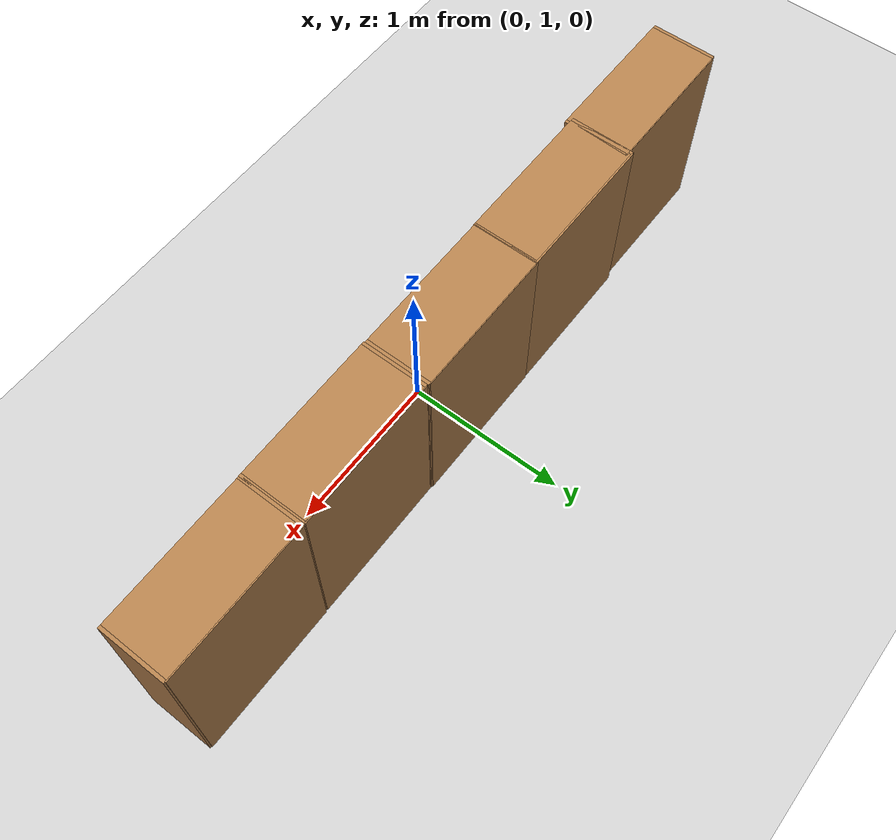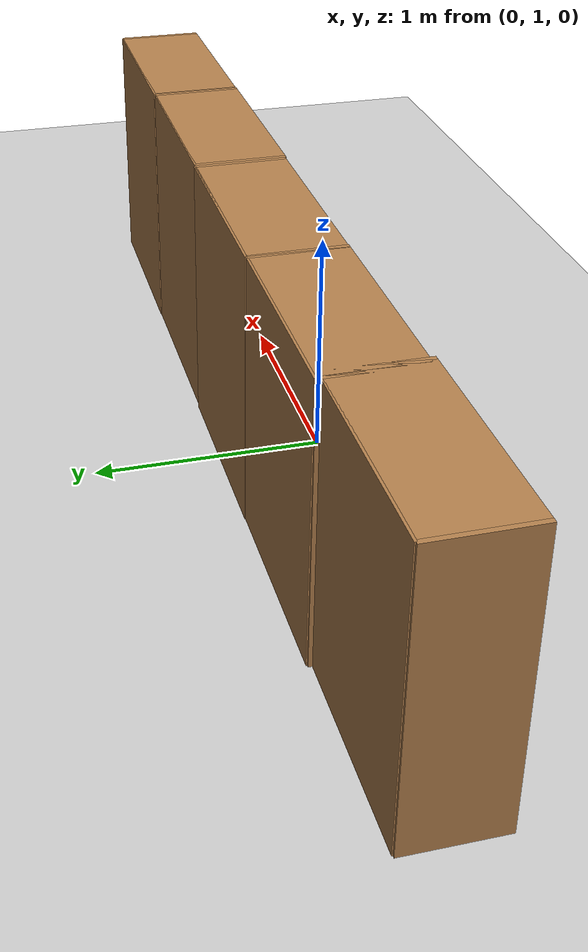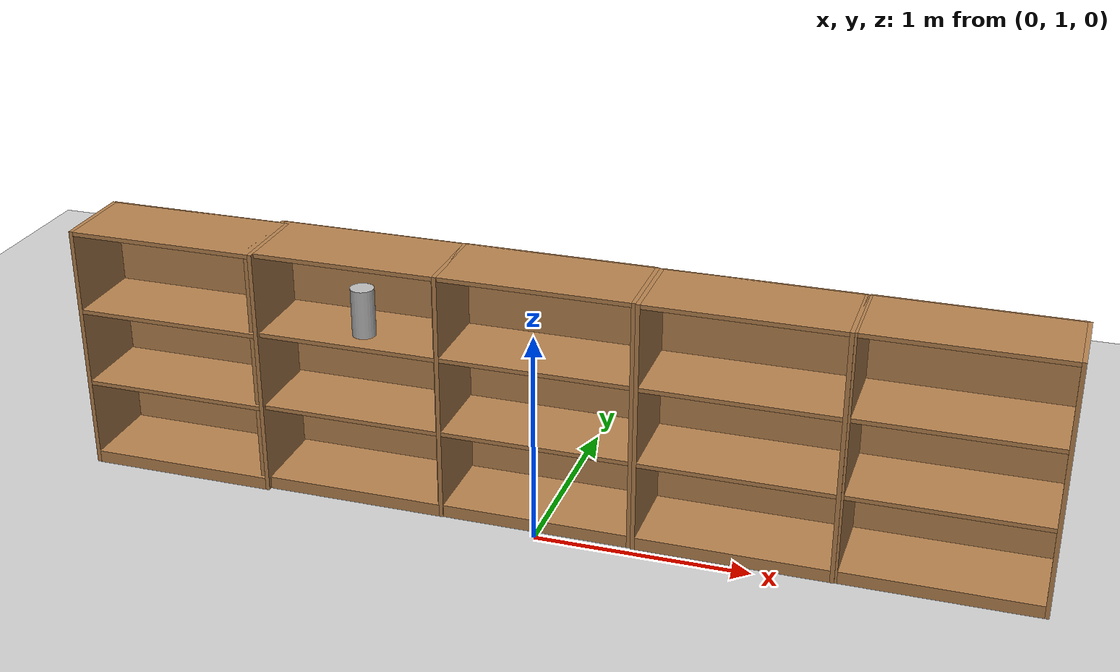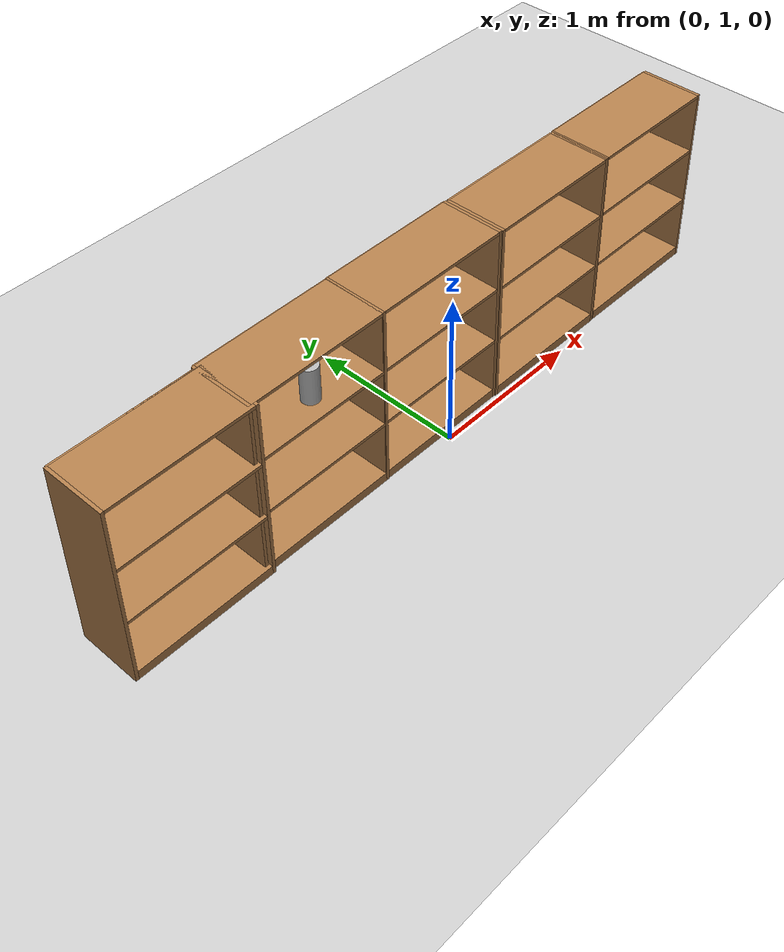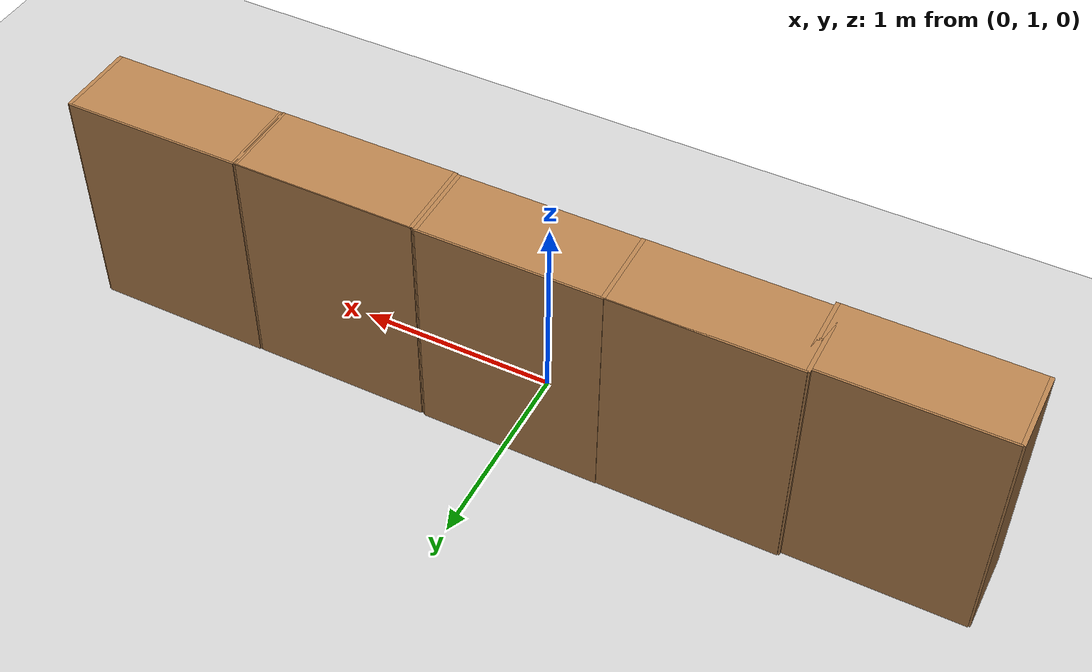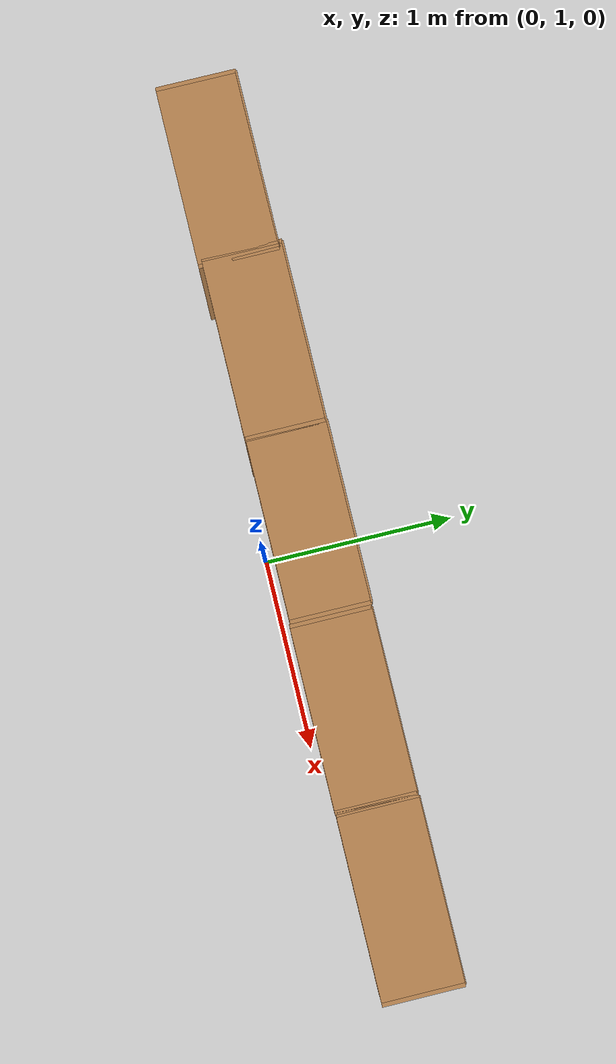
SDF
<sdf version="1.6">
 <world name="default">
  <light name="sun" type="directional">
   <pose>0 0 10 0 -0 0</pose>
   <diffuse>0.8 0.8 0.8 1</diffuse>
   <specular>0.2 0.2 0.2 1</specular>
   <attenuation>
    <range>1000</range>
    <constant>0.9</constant>
    <linear>0.01</linear>
    <quadratic>0.001</quadratic>
   </attenuation>
   <direction>-0.5 0.1 -0.9</direction>
  </light>
  <model name="ground_plane">
   <static>1</static>
   <link name="link">
    <collision name="collision">
     <geometry><plane><normal>0 0 1</normal><size>100 100</size></plane></geometry>
     <surface><friction><ode><mu>100</mu><mu2>50</mu2></ode></friction></surface>
    </collision>
    <visual name="visual">
     <cast_shadows>0</cast_shadows>
     <geometry><plane><normal>0 0 1</normal><size>100 100</size></plane></geometry>
     <material>
      <script><uri>file://media/materials/scripts/gazebo.material</uri><name>Gazebo/Grey</name></script>
     </material>
    </visual>
   </link>
  </model>
  <gravity>0 0 -9.8</gravity>
  <magnetic_field>6e-06 2.3e-05 -4.2e-05</magnetic_field>
  <atmosphere type="adiabatic"/>
  <physics name="default_physics" default="0" type="ode">
   <max_step_size>0.001</max_step_size>
   <real_time_factor>1</real_time_factor>
   <real_time_update_rate>1000</real_time_update_rate>
  </physics>
  <scene><ambient>0.4 0.4 0.4 1</ambient><background>0.7 0.7 0.7 1</background><shadows>1</shadows></scene>
  <spherical_coordinates>
   <surface_model>EARTH_WGS84</surface_model>
   <latitude_deg>0</latitude_deg>
   <longitude_deg>0</longitude_deg>
   <elevation>0</elevation>
   <heading_deg>0</heading_deg>
  </spherical_coordinates>
  <model name="shelvs_5">
   <model name="bookshelf">
    <static>1</static>
    <link name="link">
     <inertial><mass>1</mass></inertial>
     <collision name="back">
      <pose>0 0.005 0.6 0 -0 0</pose>
      <geometry><box><size>0.9 0.01 1.2</size></box></geometry>
     </collision>
     <visual name="visual1">
      <pose>0 0.005 0.6 0 -0 0</pose>
      <geometry><box><size>0.9 0.01 1.2</size></box></geometry>
      <material>
       <script><uri>file://media/materials/scripts/gazebo.material</uri><name>Gazebo/Wood</name></script>
      </material>
     </visual>
     <collision name="left_side">
      <pose>0.45 -0.195 0.6 0 -0 0</pose>
      <geometry><box><size>0.02 0.4 1.2</size></box></geometry>
     </collision>
     <visual name="visual2">
      <pose>0.45 -0.195 0.6 0 -0 0</pose>
      <geometry><box><size>0.02 0.4 1.2</size></box></geometry>
      <material>
       <script><uri>file://media/materials/scripts/gazebo.material</uri><name>Gazebo/Wood</name></script>
      </material>
     </visual>
     <collision name="right_side">
      <pose>-0.45 -0.195 0.6 0 -0 0</pose>
      <geometry><box><size>0.02 0.4 1.2</size></box></geometry>
     </collision>
     <visual name="visual3">
      <pose>-0.45 -0.195 0.6 0 -0 0</pose>
      <geometry><box><size>0.02 0.4 1.2</size></box></geometry>
      <material>
       <script><uri>file://media/materials/scripts/gazebo.material</uri><name>Gazebo/Wood</name></script>
      </material>
     </visual>
     <collision name="bottom">
      <pose>0 -0.195 0.03 0 -0 0</pose>
      <geometry><box><size>0.88 0.4 0.06</size></box></geometry>
     </collision>
     <visual name="visual4">
      <pose>0 -0.195 0.03 0 -0 0</pose>
      <geometry><box><size>0.88 0.4 0.06</size></box></geometry>
      <material>
       <script><uri>file://media/materials/scripts/gazebo.material</uri><name>Gazebo/Wood</name></script>
      </material>
     </visual>
     <collision name="top">
      <pose>0 -0.195 1.19 0 -0 0</pose>
      <geometry><box><size>0.88 0.4 0.02</size></box></geometry>
     </collision>
     <visual name="visual5">
      <pose>0 -0.195 1.19 0 -0 0</pose>
      <geometry><box><size>0.88 0.4 0.02</size></box></geometry>
      <material>
       <script><uri>file://media/materials/scripts/gazebo.material</uri><name>Gazebo/Wood</name></script>
      </material>
     </visual>
     <collision name="low_shelf">
      <pose>0 -0.195 0.43 0 -0 0</pose>
      <geometry><box><size>0.88 0.4 0.02</size></box></geometry>
     </collision>
     <visual name="visual6">
      <pose>0 -0.195 0.43 0 -0 0</pose>
      <geometry><box><size>0.88 0.4 0.02</size></box></geometry>
      <material>
       <script><uri>file://media/materials/scripts/gazebo.material</uri><name>Gazebo/Wood</name></script>
      </material>
     </visual>
     <collision name="high_shelf">
      <pose>0 -0.195 0.8 0 -0 0</pose>
      <geometry><box><size>0.88 0.4 0.02</size></box></geometry>
     </collision>
     <visual name="visual7">
      <pose>0 -0.195 0.8 0 -0 0</pose>
      <geometry><box><size>0.88 0.4 0.02</size></box></geometry>
      <material>
       <script><uri>file://media/materials/scripts/gazebo.material</uri><name>Gazebo/Wood</name></script>
      </material>
     </visual>
    </link>
    <pose>1.48454 -0.585248 0.125186 0 -0 0</pose>
   </model>
   <model name="bookshelf_0">
    <static>1</static>
    <link name="link">
     <inertial><mass>1</mass></inertial>
     <collision name="back">
      <pose>0 0.005 0.6 0 -0 0</pose>
      <geometry><box><size>0.9 0.01 1.2</size></box></geometry>
     </collision>
     <visual name="visual1">
      <pose>0 0.005 0.6 0 -0 0</pose>
      <geometry><box><size>0.9 0.01 1.2</size></box></geometry>
      <material>
       <script><uri>file://media/materials/scripts/gazebo.material</uri><name>Gazebo/Wood</name></script>
      </material>
     </visual>
     <collision name="left_side">
      <pose>0.45 -0.195 0.6 0 -0 0</pose>
      <geometry><box><size>0.02 0.4 1.2</size></box></geometry>
     </collision>
     <visual name="visual2">
      <pose>0.45 -0.195 0.6 0 -0 0</pose>
      <geometry><box><size>0.02 0.4 1.2</size></box></geometry>
      <material>
       <script><uri>file://media/materials/scripts/gazebo.material</uri><name>Gazebo/Wood</name></script>
      </material>
     </visual>
     <collision name="right_side">
      <pose>-0.45 -0.195 0.6 0 -0 0</pose>
      <geometry><box><size>0.02 0.4 1.2</size></box></geometry>
     </collision>
     <visual name="visual3">
      <pose>-0.45 -0.195 0.6 0 -0 0</pose>
      <geometry><box><size>0.02 0.4 1.2</size></box></geometry>
      <material>
       <script><uri>file://media/materials/scripts/gazebo.material</uri><name>Gazebo/Wood</name></script>
      </material>
     </visual>
     <collision name="bottom">
      <pose>0 -0.195 0.03 0 -0 0</pose>
      <geometry><box><size>0.88 0.4 0.06</size></box></geometry>
     </collision>
     <visual name="visual4">
      <pose>0 -0.195 0.03 0 -0 0</pose>
      <geometry><box><size>0.88 0.4 0.06</size></box></geometry>
      <material>
       <script><uri>file://media/materials/scripts/gazebo.material</uri><name>Gazebo/Wood</name></script>
      </material>
     </visual>
     <collision name="top">
      <pose>0 -0.195 1.19 0 -0 0</pose>
      <geometry><box><size>0.88 0.4 0.02</size></box></geometry>
     </collision>
     <visual name="visual5">
      <pose>0 -0.195 1.19 0 -0 0</pose>
      <geometry><box><size>0.88 0.4 0.02</size></box></geometry>
      <material>
       <script><uri>file://media/materials/scripts/gazebo.material</uri><name>Gazebo/Wood</name></script>
      </material>
     </visual>
     <collision name="low_shelf">
      <pose>0 -0.195 0.43 0 -0 0</pose>
      <geometry><box><size>0.88 0.4 0.02</size></box></geometry>
     </collision>
     <visual name="visual6">
      <pose>0 -0.195 0.43 0 -0 0</pose>
      <geometry><box><size>0.88 0.4 0.02</size></box></geometry>
      <material>
       <script><uri>file://media/materials/scripts/gazebo.material</uri><name>Gazebo/Wood</name></script>
      </material>
     </visual>
     <collision name="high_shelf">
      <pose>0 -0.195 0.8 0 -0 0</pose>
      <geometry><box><size>0.88 0.4 0.02</size></box></geometry>
     </collision>
     <visual name="visual7">
      <pose>0 -0.195 0.8 0 -0 0</pose>
      <geometry><box><size>0.88 0.4 0.02</size></box></geometry>
      <material>
       <script><uri>file://media/materials/scripts/gazebo.material</uri><name>Gazebo/Wood</name></script>
      </material>
     </visual>
    </link>
    <pose>0.564761 -0.579556 0.125186 0 -0 0</pose>
   </model>
   <model name="bookshelf_1">
    <static>1</static>
    <link name="link">
     <inertial><mass>1</mass></inertial>
     <collision name="back">
      <pose>0 0.005 0.6 0 -0 0</pose>
      <geometry><box><size>0.9 0.01 1.2</size></box></geometry>
     </collision>
     <visual name="visual1">
      <pose>0 0.005 0.6 0 -0 0</pose>
      <geometry><box><size>0.9 0.01 1.2</size></box></geometry>
      <material>
       <script><uri>file://media/materials/scripts/gazebo.material</uri><name>Gazebo/Wood</name></script>
      </material>
     </visual>
     <collision name="left_side">
      <pose>0.45 -0.195 0.6 0 -0 0</pose>
      <geometry><box><size>0.02 0.4 1.2</size></box></geometry>
     </collision>
     <visual name="visual2">
      <pose>0.45 -0.195 0.6 0 -0 0</pose>
      <geometry><box><size>0.02 0.4 1.2</size></box></geometry>
      <material>
       <script><uri>file://media/materials/scripts/gazebo.material</uri><name>Gazebo/Wood</name></script>
      </material>
     </visual>
     <collision name="right_side">
      <pose>-0.45 -0.195 0.6 0 -0 0</pose>
      <geometry><box><size>0.02 0.4 1.2</size></box></geometry>
     </collision>
     <visual name="visual3">
      <pose>-0.45 -0.195 0.6 0 -0 0</pose>
      <geometry><box><size>0.02 0.4 1.2</size></box></geometry>
      <material>
       <script><uri>file://media/materials/scripts/gazebo.material</uri><name>Gazebo/Wood</name></script>
      </material>
     </visual>
     <collision name="bottom">
      <pose>0 -0.195 0.03 0 -0 0</pose>
      <geometry><box><size>0.88 0.4 0.06</size></box></geometry>
     </collision>
     <visual name="visual4">
      <pose>0 -0.195 0.03 0 -0 0</pose>
      <geometry><box><size>0.88 0.4 0.06</size></box></geometry>
      <material>
       <script><uri>file://media/materials/scripts/gazebo.material</uri><name>Gazebo/Wood</name></script>
      </material>
     </visual>
     <collision name="top">
      <pose>0 -0.195 1.19 0 -0 0</pose>
      <geometry><box><size>0.88 0.4 0.02</size></box></geometry>
     </collision>
     <visual name="visual5">
      <pose>0 -0.195 1.19 0 -0 0</pose>
      <geometry><box><size>0.88 0.4 0.02</size></box></geometry>
      <material>
       <script><uri>file://media/materials/scripts/gazebo.material</uri><name>Gazebo/Wood</name></script>
      </material>
     </visual>
     <collision name="low_shelf">
      <pose>0 -0.195 0.43 0 -0 0</pose>
      <geometry><box><size>0.88 0.4 0.02</size></box></geometry>
     </collision>
     <visual name="visual6">
      <pose>0 -0.195 0.43 0 -0 0</pose>
      <geometry><box><size>0.88 0.4 0.02</size></box></geometry>
      <material>
       <script><uri>file://media/materials/scripts/gazebo.material</uri><name>Gazebo/Wood</name></script>
      </material>
     </visual>
     <collision name="high_shelf">
      <pose>0 -0.195 0.8 0 -0 0</pose>
      <geometry><box><size>0.88 0.4 0.02</size></box></geometry>
     </collision>
     <visual name="visual7">
      <pose>0 -0.195 0.8 0 -0 0</pose>
      <geometry><box><size>0.88 0.4 0.02</size></box></geometry>
      <material>
       <script><uri>file://media/materials/scripts/gazebo.material</uri><name>Gazebo/Wood</name></script>
      </material>
     </visual>
    </link>
    <pose>-0.331053 -0.582468 0.125186 0 -0 0</pose>
   </model>
   <model name="bookshelf_2">
    <static>1</static>
    <link name="link">
     <inertial><mass>1</mass></inertial>
     <collision name="back">
      <pose>0 0.005 0.6 0 -0 0</pose>
      <geometry><box><size>0.9 0.01 1.2</size></box></geometry>
     </collision>
     <visual name="visual1">
      <pose>0 0.005 0.6 0 -0 0</pose>
      <geometry><box><size>0.9 0.01 1.2</size></box></geometry>
      <material>
       <script><uri>file://media/materials/scripts/gazebo.material</uri><name>Gazebo/Wood</name></script>
      </material>
     </visual>
     <collision name="left_side">
      <pose>0.45 -0.195 0.6 0 -0 0</pose>
      <geometry><box><size>0.02 0.4 1.2</size></box></geometry>
     </collision>
     <visual name="visual2">
      <pose>0.45 -0.195 0.6 0 -0 0</pose>
      <geometry><box><size>0.02 0.4 1.2</size></box></geometry>
      <material>
       <script><uri>file://media/materials/scripts/gazebo.material</uri><name>Gazebo/Wood</name></script>
      </material>
     </visual>
     <collision name="right_side">
      <pose>-0.45 -0.195 0.6 0 -0 0</pose>
      <geometry><box><size>0.02 0.4 1.2</size></box></geometry>
     </collision>
     <visual name="visual3">
      <pose>-0.45 -0.195 0.6 0 -0 0</pose>
      <geometry><box><size>0.02 0.4 1.2</size></box></geometry>
      <material>
       <script><uri>file://media/materials/scripts/gazebo.material</uri><name>Gazebo/Wood</name></script>
      </material>
     </visual>
     <collision name="bottom">
      <pose>0 -0.195 0.03 0 -0 0</pose>
      <geometry><box><size>0.88 0.4 0.06</size></box></geometry>
     </collision>
     <visual name="visual4">
      <pose>0 -0.195 0.03 0 -0 0</pose>
      <geometry><box><size>0.88 0.4 0.06</size></box></geometry>
      <material>
       <script><uri>file://media/materials/scripts/gazebo.material</uri><name>Gazebo/Wood</name></script>
      </material>
     </visual>
     <collision name="top">
      <pose>0 -0.195 1.19 0 -0 0</pose>
      <geometry><box><size>0.88 0.4 0.02</size></box></geometry>
     </collision>
     <visual name="visual5">
      <pose>0 -0.195 1.19 0 -0 0</pose>
      <geometry><box><size>0.88 0.4 0.02</size></box></geometry>
      <material>
       <script><uri>file://media/materials/scripts/gazebo.material</uri><name>Gazebo/Wood</name></script>
      </material>
     </visual>
     <collision name="low_shelf">
      <pose>0 -0.195 0.43 0 -0 0</pose>
      <geometry><box><size>0.88 0.4 0.02</size></box></geometry>
     </collision>
     <visual name="visual6">
      <pose>0 -0.195 0.43 0 -0 0</pose>
      <geometry><box><size>0.88 0.4 0.02</size></box></geometry>
      <material>
       <script><uri>file://media/materials/scripts/gazebo.material</uri><name>Gazebo/Wood</name></script>
      </material>
     </visual>
     <collision name="high_shelf">
      <pose>0 -0.195 0.8 0 -0 0</pose>
      <geometry><box><size>0.88 0.4 0.02</size></box></geometry>
     </collision>
     <visual name="visual7">
      <pose>0 -0.195 0.8 0 -0 0</pose>
      <geometry><box><size>0.88 0.4 0.02</size></box></geometry>
      <material>
       <script><uri>file://media/materials/scripts/gazebo.material</uri><name>Gazebo/Wood</name></script>
      </material>
     </visual>
    </link>
    <pose>-1.20123 -0.60353 0.125186 0 -0 0</pose>
   </model>
   <model name="bookshelf_3">
    <static>1</static>
    <link name="link">
     <inertial><mass>1</mass></inertial>
     <collision name="back">
      <pose>0 0.005 0.6 0 -0 0</pose>
      <geometry><box><size>0.9 0.01 1.2</size></box></geometry>
     </collision>
     <visual name="visual1">
      <pose>0 0.005 0.6 0 -0 0</pose>
      <geometry><box><size>0.9 0.01 1.2</size></box></geometry>
      <material>
       <script><uri>file://media/materials/scripts/gazebo.material</uri><name>Gazebo/Wood</name></script>
      </material>
     </visual>
     <collision name="left_side">
      <pose>0.45 -0.195 0.6 0 -0 0</pose>
      <geometry><box><size>0.02 0.4 1.2</size></box></geometry>
     </collision>
     <visual name="visual2">
      <pose>0.45 -0.195 0.6 0 -0 0</pose>
      <geometry><box><size>0.02 0.4 1.2</size></box></geometry>
      <material>
       <script><uri>file://media/materials/scripts/gazebo.material</uri><name>Gazebo/Wood</name></script>
      </material>
     </visual>
     <collision name="right_side">
      <pose>-0.45 -0.195 0.6 0 -0 0</pose>
      <geometry><box><size>0.02 0.4 1.2</size></box></geometry>
     </collision>
     <visual name="visual3">
      <pose>-0.45 -0.195 0.6 0 -0 0</pose>
      <geometry><box><size>0.02 0.4 1.2</size></box></geometry>
      <material>
       <script><uri>file://media/materials/scripts/gazebo.material</uri><name>Gazebo/Wood</name></script>
      </material>
     </visual>
     <collision name="bottom">
      <pose>0 -0.195 0.03 0 -0 0</pose>
      <geometry><box><size>0.88 0.4 0.06</size></box></geometry>
     </collision>
     <visual name="visual4">
      <pose>0 -0.195 0.03 0 -0 0</pose>
      <geometry><box><size>0.88 0.4 0.06</size></box></geometry>
      <material>
       <script><uri>file://media/materials/scripts/gazebo.material</uri><name>Gazebo/Wood</name></script>
      </material>
     </visual>
     <collision name="top">
      <pose>0 -0.195 1.19 0 -0 0</pose>
      <geometry><box><size>0.88 0.4 0.02</size></box></geometry>
     </collision>
     <visual name="visual5">
      <pose>0 -0.195 1.19 0 -0 0</pose>
      <geometry><box><size>0.88 0.4 0.02</size></box></geometry>
      <material>
       <script><uri>file://media/materials/scripts/gazebo.material</uri><name>Gazebo/Wood</name></script>
      </material>
     </visual>
     <collision name="low_shelf">
      <pose>0 -0.195 0.43 0 -0 0</pose>
      <geometry><box><size>0.88 0.4 0.02</size></box></geometry>
     </collision>
     <visual name="visual6">
      <pose>0 -0.195 0.43 0 -0 0</pose>
      <geometry><box><size>0.88 0.4 0.02</size></box></geometry>
      <material>
       <script><uri>file://media/materials/scripts/gazebo.material</uri><name>Gazebo/Wood</name></script>
      </material>
     </visual>
     <collision name="high_shelf">
      <pose>0 -0.195 0.8 0 -0 0</pose>
      <geometry><box><size>0.88 0.4 0.02</size></box></geometry>
     </collision>
     <visual name="visual7">
      <pose>0 -0.195 0.8 0 -0 0</pose>
      <geometry><box><size>0.88 0.4 0.02</size></box></geometry>
      <material>
       <script><uri>file://media/materials/scripts/gazebo.material</uri><name>Gazebo/Wood</name></script>
      </material>
     </visual>
    </link>
    <pose>2.39602 -0.582585 0.125186 0 -0 0</pose>
   </model>
   <static>0</static>
   <pose>-0.587034 2.01942 -0.126403 0 -0 0</pose>
  </model>
  <model name="beer">
   <link name="link">
    <pose>0 0 0.115 0 -0 0</pose>
    <inertial>
     <mass>0.39</mass>
     <inertia><ixx>0.00058</ixx><ixy>0</ixy><ixz>0</ixz><iyy>0.00058</iyy><iyz>0</iyz><izz>0.00019</izz></inertia>
    </inertial>
    <collision name="collision">
     <geometry><cylinder><radius>0.055</radius><length>0.23</length></cylinder></geometry>
    </collision>
    <visual name="visual">
     <geometry><cylinder><radius>0.055</radius><length>0.23</length></cylinder></geometry>
     <material>
      <script>
       <uri>model://beer/materials/scripts</uri>
       <uri>model://beer/materials/textures</uri>
       <name>Beer/Diffuse</name>
      </script>
     </material>
    </visual>
   </link>
   <pose>-0.868891 1.17852 0.808784 -1e-06 2.8e-05 0.005469</pose>
  </model>
 </world>
</sdf>
